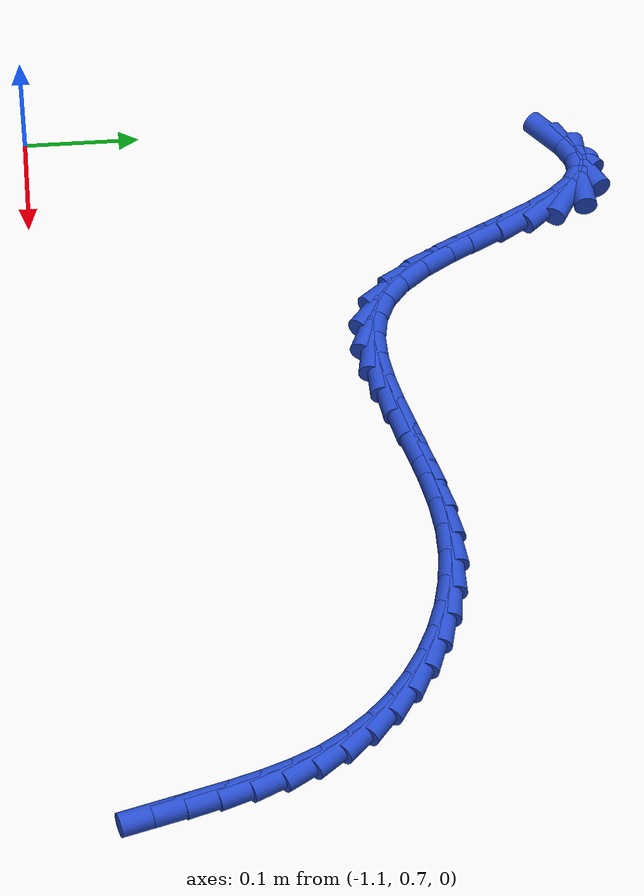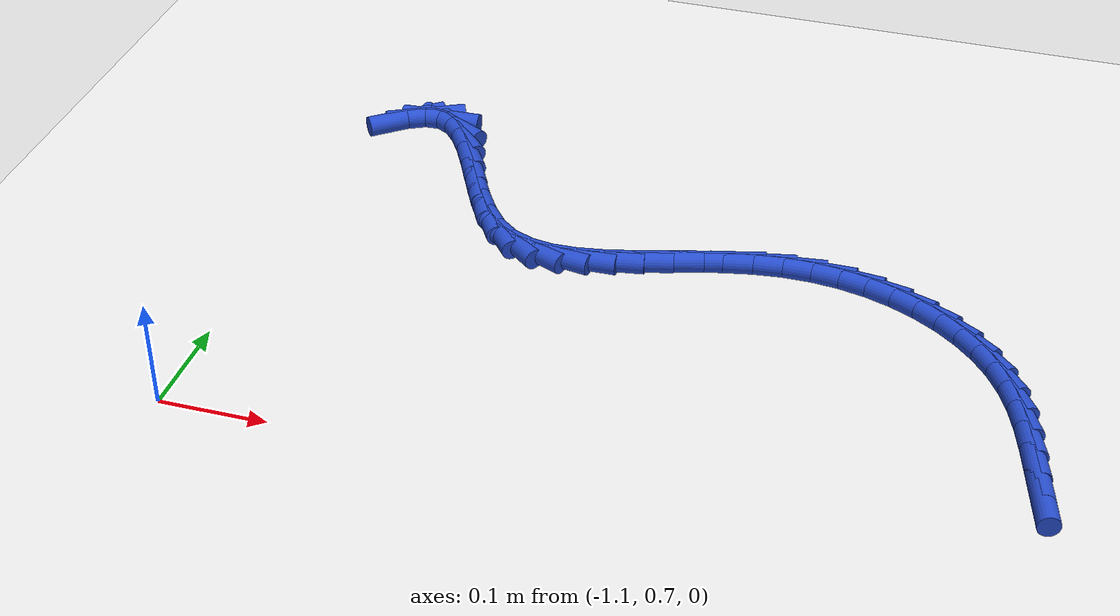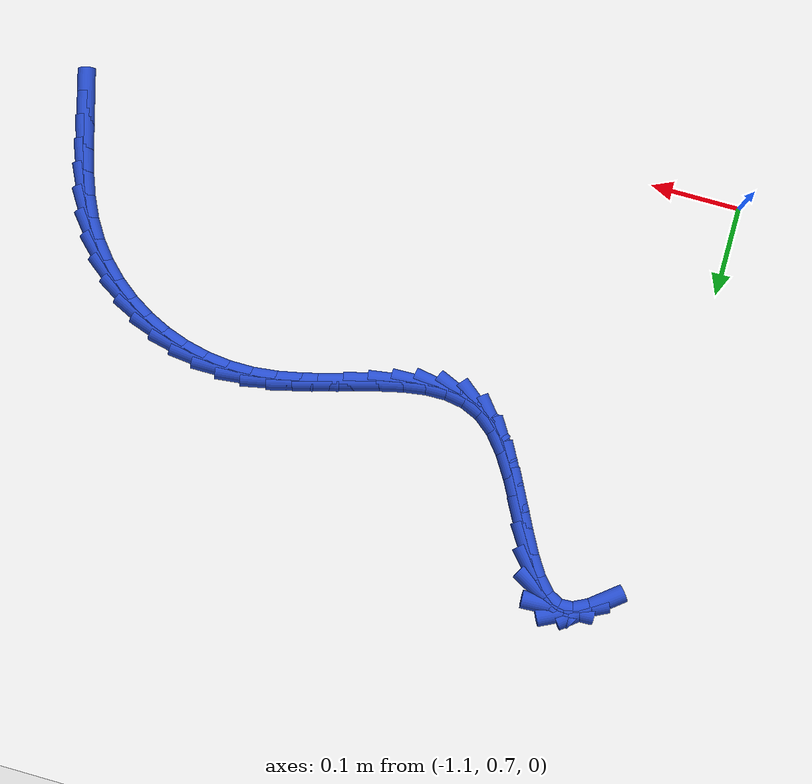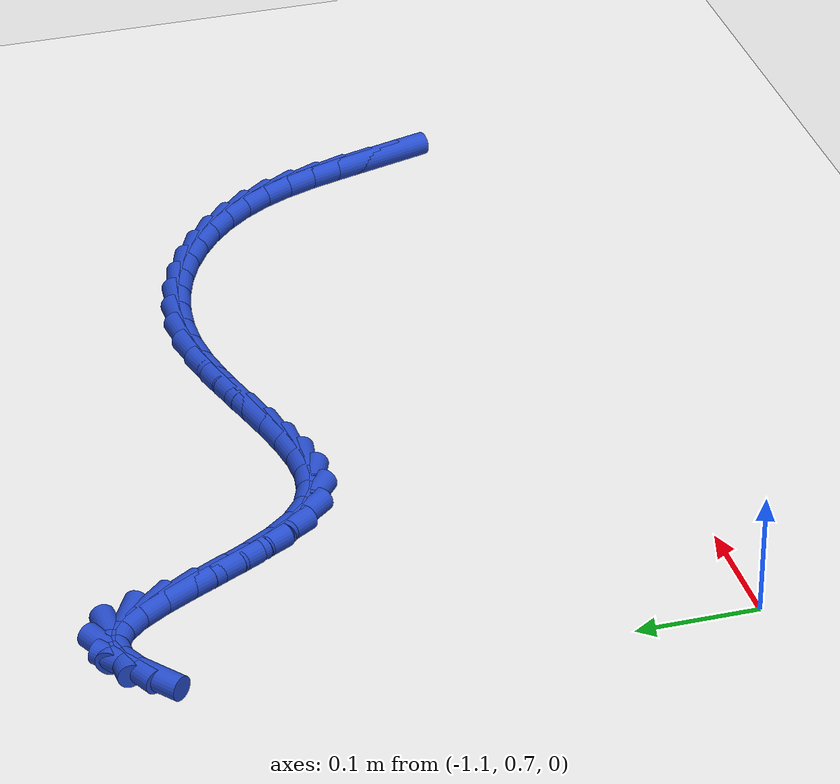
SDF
<sdf version="1.6">
 <world name="default">
  <model name="ground_plane">
   <static>1</static>
   <link name="link">
    <collision name="collision">
     <geometry><plane><normal>0 0 1</normal><size>100 100</size></plane></geometry>
     <surface><friction><ode><mu>100</mu><mu2>50</mu2></ode></friction></surface>
    </collision>
    <visual name="visual">
     <cast_shadows>0</cast_shadows>
     <geometry><plane><normal>0 0 1</normal><size>100 100</size></plane></geometry>
     <material>
      <script><uri>file://media/materials/scripts/gazebo.material</uri><name>Gazebo/WhiteGlow</name></script>
     </material>
    </visual>
   </link>
  </model>
  <model name="line">
   <link name="link_37">
    <pose>-0.3681899620685608 0.7852642038781988 0.01 0 1.57 -1.2999440185714706</pose>
    <collision name="collision">
     <geometry><cylinder><radius>0.01</radius><length>0.08</length></cylinder></geometry>
    </collision>
    <visual name="visual">
     <material>
      <script><name>Gazebo/Blue</name><uri>file://media/materials/scripts/gazebo.material</uri></script>
     </material>
     <geometry><cylinder><radius>0.01</radius><length>0.08</length></cylinder></geometry>
    </visual>
   </link>
   <link name="link_38">
    <pose>-0.37523355729718166 0.8106304460591186 0.01 0 1.57 -1.2973317037078116</pose>
    <collision name="collision">
     <geometry><cylinder><radius>0.01</radius><length>0.08</length></cylinder></geometry>
    </collision>
    <visual name="visual">
     <material>
      <script><name>Gazebo/Blue</name><uri>file://media/materials/scripts/gazebo.material</uri></script>
     </material>
     <geometry><cylinder><radius>0.01</radius><length>0.08</length></cylinder></geometry>
    </visual>
   </link>
   <link name="link_39">
    <pose>-0.38241899353240005 0.8362477300828985 0.01 0 1.57 -1.2677604752531975</pose>
    <collision name="collision">
     <geometry><cylinder><radius>0.01</radius><length>0.08</length></cylinder></geometry>
    </collision>
    <visual name="visual">
     <material>
      <script><name>Gazebo/Blue</name><uri>file://media/materials/scripts/gazebo.material</uri></script>
     </material>
     <geometry><cylinder><radius>0.01</radius><length>0.08</length></cylinder></geometry>
    </visual>
   </link>
   <link name="link_40">
    <pose>-0.39035834988909407 0.8616402034397295 0.01 0 1.57 -1.2103959692966826</pose>
    <collision name="collision">
     <geometry><cylinder><radius>0.01</radius><length>0.08</length></cylinder></geometry>
    </collision>
    <visual name="visual">
     <material>
      <script><name>Gazebo/Blue</name><uri>file://media/materials/scripts/gazebo.material</uri></script>
     </material>
     <geometry><cylinder><radius>0.01</radius><length>0.08</length></cylinder></geometry>
    </visual>
   </link>
   <link name="link_41">
    <pose>-0.3996637054821419 0.8863320136198011 0.01 0 1.57 -1.1234114097512395</pose>
    <collision name="collision">
     <geometry><cylinder><radius>0.01</radius><length>0.08</length></cylinder></geometry>
    </collision>
    <visual name="visual">
     <material>
      <script><name>Gazebo/Blue</name><uri>file://media/materials/scripts/gazebo.material</uri></script>
     </material>
     <geometry><cylinder><radius>0.01</radius><length>0.08</length></cylinder></geometry>
    </visual>
   </link>
   <link name="link_42">
    <pose>-0.4109471394264216 0.9098473081133044 0.01 0 1.57 -1.0083353014706375</pose>
    <collision name="collision">
     <geometry><cylinder><radius>0.01</radius><length>0.08</length></cylinder></geometry>
    </collision>
    <visual name="visual">
     <material>
      <script><name>Gazebo/Blue</name><uri>file://media/materials/scripts/gazebo.material</uri></script>
     </material>
     <geometry><cylinder><radius>0.01</radius><length>0.08</length></cylinder></geometry>
    </visual>
   </link>
   <link name="link_43">
    <pose>-0.42474697905533987 0.9317384997109359 0.01 0 1.57 -0.887326714442278</pose>
    <collision name="collision">
     <geometry><cylinder><radius>0.01</radius><length>0.08</length></cylinder></geometry>
    </collision>
    <visual name="visual">
     <material>
      <script><name>Gazebo/Blue</name><uri>file://media/materials/scripts/gazebo.material</uri></script>
     </material>
     <geometry><cylinder><radius>0.01</radius><length>0.08</length></cylinder></geometry>
    </visual>
   </link>
   <link name="link_44">
    <pose>-0.44105796557774185 0.9517663300715946 0.01 0 1.57 -0.7702196986375826</pose>
    <collision name="collision">
     <geometry><cylinder><radius>0.01</radius><length>0.08</length></cylinder></geometry>
    </collision>
    <visual name="visual">
     <material>
      <script><name>Gazebo/Blue</name><uri>file://media/materials/scripts/gazebo.material</uri></script>
     </material>
     <geometry><cylinder><radius>0.01</radius><length>0.08</length></cylinder></geometry>
    </visual>
   </link>
   <link name="link_45">
    <pose>-0.45963178341461025 0.9697846921382824 0.01 0 1.57 -0.6565164359457617</pose>
    <collision name="collision">
     <geometry><cylinder><radius>0.01</radius><length>0.08</length></cylinder></geometry>
    </collision>
    <visual name="visual">
     <material>
      <script><name>Gazebo/Blue</name><uri>file://media/materials/scripts/gazebo.material</uri></script>
     </material>
     <geometry><cylinder><radius>0.01</radius><length>0.08</length></cylinder></geometry>
    </visual>
   </link>
   <link name="link_46">
    <pose>-0.4802189828700937 0.9856479135032072 0.01 0 1.57 -0.5453960585127497</pose>
    <collision name="collision">
     <geometry><cylinder><radius>0.01</radius><length>0.08</length></cylinder></geometry>
    </collision>
    <visual name="visual">
     <material>
      <script><name>Gazebo/Blue</name><uri>file://media/materials/scripts/gazebo.material</uri></script>
     </material>
     <geometry><cylinder><radius>0.01</radius><length>0.08</length></cylinder></geometry>
    </visual>
   </link>
   <link name="link_47">
    <pose>-0.5025701142483407 0.9992103217585755 0.01 0 1.57 -0.4358918287051869</pose>
    <collision name="collision">
     <geometry><cylinder><radius>0.01</radius><length>0.08</length></cylinder></geometry>
    </collision>
    <visual name="visual">
     <material>
      <script><name>Gazebo/Blue</name><uri>file://media/materials/scripts/gazebo.material</uri></script>
     </material>
     <geometry><cylinder><radius>0.01</radius><length>0.08</length></cylinder></geometry>
    </visual>
   </link>
   <link name="link_48">
    <pose>-0.5264357278535002 1.0103262444965948 0.01 0 1.57 -0.3270015888923815</pose>
    <collision name="collision">
     <geometry><cylinder><radius>0.01</radius><length>0.08</length></cylinder></geometry>
    </collision>
    <visual name="visual">
     <material>
      <script><name>Gazebo/Blue</name><uri>file://media/materials/scripts/gazebo.material</uri></script>
     </material>
     <geometry><cylinder><radius>0.01</radius><length>0.08</length></cylinder></geometry>
    </visual>
   </link>
   <link name="link_49">
    <pose>-0.5515663739897203 1.0188500093094714 0.01 0 1.57 -0.21778171106188735</pose>
    <collision name="collision">
     <geometry><cylinder><radius>0.01</radius><length>0.08</length></cylinder></geometry>
    </collision>
    <visual name="visual">
     <material>
      <script><name>Gazebo/Blue</name><uri>file://media/materials/scripts/gazebo.material</uri></script>
     </material>
     <geometry><cylinder><radius>0.01</radius><length>0.08</length></cylinder></geometry>
    </visual>
   </link>
   <link name="link_50">
    <pose>-0.5777126029611501 1.024635943789413 0.01 0 1.57 -0.10743229434449983</pose>
    <collision name="collision">
     <geometry><cylinder><radius>0.01</radius><length>0.08</length></cylinder></geometry>
    </collision>
    <visual name="visual">
     <material>
      <script><name>Gazebo/Blue</name><uri>file://media/materials/scripts/gazebo.material</uri></script>
     </material>
     <geometry><cylinder><radius>0.01</radius><length>0.08</length></cylinder></geometry>
    </visual>
   </link>
   <link name="link_51">
    <pose>-0.6046249650719375 1.0275383755286263 0.01 0 1.57 0.004620740703959871</pose>
    <collision name="collision">
     <geometry><cylinder><radius>0.01</radius><length>0.08</length></cylinder></geometry>
    </collision>
    <visual name="visual">
     <material>
      <script><name>Gazebo/Blue</name><uri>file://media/materials/scripts/gazebo.material</uri></script>
     </material>
     <geometry><cylinder><radius>0.01</radius><length>0.08</length></cylinder></geometry>
    </visual>
   </link>
   <link name="link_52">
    <pose>-0.6320540106262318 1.0274116321193183 0.01 0 1.57 0.11573695629212997</pose>
    <collision name="collision">
     <geometry><cylinder><radius>0.01</radius><length>0.08</length></cylinder></geometry>
    </collision>
    <visual name="visual">
     <material>
      <script><name>Gazebo/Blue</name><uri>file://media/materials/scripts/gazebo.material</uri></script>
     </material>
     <geometry><cylinder><radius>0.01</radius><length>0.08</length></cylinder></geometry>
    </visual>
   </link>
   <link name="link_53">
    <pose>-0.6597530591175419 1.024191437483295 0.01 0 1.57 0.20262990746897866</pose>
    <collision name="collision">
     <geometry><cylinder><radius>0.01</radius><length>0.08</length></cylinder></geometry>
    </collision>
    <visual name="visual">
     <material>
      <script><name>Gazebo/Blue</name><uri>file://media/materials/scripts/gazebo.material</uri></script>
     </material>
     <geometry><cylinder><radius>0.01</radius><length>0.08</length></cylinder></geometry>
    </visual>
   </link>
   <link name="link_54">
    <pose>-0.6874984840334841 1.0184911544678272 0.01 0 1.57 0.2564060793894565</pose>
    <collision name="collision">
     <geometry><cylinder><radius>0.01</radius><length>0.08</length></cylinder></geometry>
    </collision>
    <visual name="visual">
     <material>
      <script><name>Gazebo/Blue</name><uri>file://media/materials/scripts/gazebo.material</uri></script>
     </material>
     <geometry><cylinder><radius>0.01</radius><length>0.08</length></cylinder></geometry>
    </visual>
   </link>
   <link name="link_55">
    <pose>-0.7150780990979356 1.0112604151744806 0.01 0 1.57 0.2795644236519791</pose>
    <collision name="collision">
     <geometry><cylinder><radius>0.01</radius><length>0.08</length></cylinder></geometry>
    </collision>
    <visual name="visual">
     <material>
      <script><name>Gazebo/Blue</name><uri>file://media/materials/scripts/gazebo.material</uri></script>
     </material>
     <geometry><cylinder><radius>0.01</radius><length>0.08</length></cylinder></geometry>
    </visual>
   </link>
   <link name="link_56">
    <pose>-0.742279800471208 1.0034512748049902 0.01 0 1.57 0.2724585727655352</pose>
    <collision name="collision">
     <geometry><cylinder><radius>0.01</radius><length>0.08</length></cylinder></geometry>
    </collision>
    <visual name="visual">
     <material>
      <script><name>Gazebo/Blue</name><uri>file://media/materials/scripts/gazebo.material</uri></script>
     </material>
     <geometry><cylinder><radius>0.01</radius><length>0.08</length></cylinder></geometry>
    </visual>
   </link>
   <link name="link_57">
    <pose>-0.7688914843136125 0.9960157885610905 0.01 0 1.57 0.23244635598275726</pose>
    <collision name="collision">
     <geometry><cylinder><radius>0.01</radius><length>0.08</length></cylinder></geometry>
    </collision>
    <visual name="visual">
     <material>
      <script><name>Gazebo/Blue</name><uri>file://media/materials/scripts/gazebo.material</uri></script>
     </material>
     <geometry><cylinder><radius>0.01</radius><length>0.08</length></cylinder></geometry>
    </visual>
   </link>
   <link name="link_58">
    <pose>-0.7947010467854609 0.989906011644517 0.01 0 1.57 0.15333261369806758</pose>
    <collision name="collision">
     <geometry><cylinder><radius>0.01</radius><length>0.08</length></cylinder></geometry>
    </collision>
    <visual name="visual">
     <material>
      <script><name>Gazebo/Blue</name><uri>file://media/materials/scripts/gazebo.material</uri></script>
     </material>
     <geometry><cylinder><radius>0.01</radius><length>0.08</length></cylinder></geometry>
    </visual>
   </link>
   <link name="link_59">
    <pose>-0.8194963840470649 0.9860739992570043 0.01 0 1.57 0.025544633148398773</pose>
    <collision name="collision">
     <geometry><cylinder><radius>0.01</radius><length>0.08</length></cylinder></geometry>
    </collision>
    <visual name="visual">
     <material>
      <script><name>Gazebo/Blue</name><uri>file://media/materials/scripts/gazebo.material</uri></script>
     </material>
     <geometry><cylinder><radius>0.01</radius><length>0.08</length></cylinder></geometry>
    </visual>
   </link>
   <link name="link_60">
    <pose>-0.8430653922587361 0.9854718066002872 0.01 0 1.57 -0.16036383075150487</pose>
    <collision name="collision">
     <geometry><cylinder><radius>0.01</radius><length>0.08</length></cylinder></geometry>
    </collision>
    <visual name="visual">
     <material>
      <script><name>Gazebo/Blue</name><uri>file://media/materials/scripts/gazebo.material</uri></script>
     </material>
     <geometry><cylinder><radius>0.01</radius><length>0.08</length></cylinder></geometry>
    </visual>
   </link>
   <link name="link_61">
    <pose>-0.8651959675807865 0.9890514888761013 0.01 0 1.57 -0.4022674501179532</pose>
    <collision name="collision">
     <geometry><cylinder><radius>0.01</radius><length>0.08</length></cylinder></geometry>
    </collision>
    <visual name="visual">
     <material>
      <script><name>Gazebo/Blue</name><uri>file://media/materials/scripts/gazebo.material</uri></script>
     </material>
     <geometry><cylinder><radius>0.01</radius><length>0.08</length></cylinder></geometry>
    </visual>
   </link>
   <link name="link_62">
    <pose>-0.8856760061735269 0.9977651012861808 0.01 0 1.57 -0.6698274395557087</pose>
    <collision name="collision">
     <geometry><cylinder><radius>0.01</radius><length>0.08</length></cylinder></geometry>
    </collision>
    <visual name="visual">
     <material>
      <script><name>Gazebo/Blue</name><uri>file://media/materials/scripts/gazebo.material</uri></script>
     </material>
     <geometry><cylinder><radius>0.01</radius><length>0.08</length></cylinder></geometry>
    </visual>
   </link>
   <link name="link_63">
    <pose>-0.9043033965153783 1.012517497872306 0.01 0 1.57 -0.8807088605219451</pose>
    <collision name="collision">
     <geometry><cylinder><radius>0.01</radius><length>0.08</length></cylinder></geometry>
    </collision>
    <visual name="visual">
     <material>
      <script><name>Gazebo/Blue</name><uri>file://media/materials/scripts/gazebo.material</uri></script>
     </material>
     <geometry><cylinder><radius>0.01</radius><length>0.08</length></cylinder></geometry>
    </visual>
   </link>
   <link name="link_64">
    <pose>-0.9211489357197618 1.0329243819512868 0.01 0 1.57 -1.0042645143305684</pose>
    <collision name="collision">
     <geometry><cylinder><radius>0.01</radius><length>0.08</length></cylinder></geometry>
    </collision>
    <visual name="visual">
     <material>
      <script><name>Gazebo/Blue</name><uri>file://media/materials/scripts/gazebo.material</uri></script>
     </material>
     <geometry><cylinder><radius>0.01</radius><length>0.08</length></cylinder></geometry>
    </visual>
   </link>
   <link name="link_65">
    <pose>-0.9365826563506443 1.0571879449589177 0.01 0 1.57 -1.0688442923768795</pose>
    <collision name="collision">
     <geometry><cylinder><radius>0.01</radius><length>0.08</length></cylinder></geometry>
    </collision>
    <visual name="visual">
     <material>
      <script><name>Gazebo/Blue</name><uri>file://media/materials/scripts/gazebo.material</uri></script>
     </material>
     <geometry><cylinder><radius>0.01</radius><length>0.08</length></cylinder></geometry>
    </visual>
   </link>
   <link name="link_66">
    <pose>-0.9509898626561805 1.0834382387933685 0.01 0 1.57 -1.0896330163368833</pose>
    <collision name="collision">
     <geometry><cylinder><radius>0.01</radius><length>0.08</length></cylinder></geometry>
    </collision>
    <visual name="visual">
     <material>
      <script><name>Gazebo/Blue</name><uri>file://media/materials/scripts/gazebo.material</uri></script>
     </material>
     <geometry><cylinder><radius>0.01</radius><length>0.08</length></cylinder></geometry>
    </visual>
   </link>
   <link name="link_67">
    <pose>-0.9647558588845252 1.1098053153528085 0.01 0 1.57 -1.0688131941317225</pose>
    <collision name="collision">
     <geometry><cylinder><radius>0.01</radius><length>0.08</length></cylinder></geometry>
    </collision>
    <visual name="visual">
     <material>
      <script><name>Gazebo/Blue</name><uri>file://media/materials/scripts/gazebo.material</uri></script>
     </material>
     <geometry><cylinder><radius>0.01</radius><length>0.08</length></cylinder></geometry>
    </visual>
   </link>
   <link name="link_68">
    <pose>-0.9782659492838334 1.1344192265354078 0.01 0 1.57 -0.9945728217207903</pose>
    <collision name="collision">
     <geometry><cylinder><radius>0.01</radius><length>0.08</length></cylinder></geometry>
    </collision>
    <visual name="visual">
     <material>
      <script><name>Gazebo/Blue</name><uri>file://media/materials/scripts/gazebo.material</uri></script>
     </material>
     <geometry><cylinder><radius>0.01</radius><length>0.08</length></cylinder></geometry>
    </visual>
   </link>
   <link name="link_69">
    <pose>-0.9919054381022597 1.1554100242393353 0.01 0 1.57 -0.8306777261333411</pose>
    <collision name="collision">
     <geometry><cylinder><radius>0.01</radius><length>0.08</length></cylinder></geometry>
    </collision>
    <visual name="visual">
     <material>
      <script><name>Gazebo/Blue</name><uri>file://media/materials/scripts/gazebo.material</uri></script>
     </material>
     <geometry><cylinder><radius>0.01</radius><length>0.08</length></cylinder></geometry>
    </visual>
   </link>
   <link name="link_70">
    <pose>-1.006059629587959 1.1709077603627605 0.01 0 1.57 -0.49541399150802545</pose>
    <collision name="collision">
     <geometry><cylinder><radius>0.01</radius><length>0.08</length></cylinder></geometry>
    </collision>
    <visual name="visual">
     <material>
      <script><name>Gazebo/Blue</name><uri>file://media/materials/scripts/gazebo.material</uri></script>
     </material>
     <geometry><cylinder><radius>0.01</radius><length>0.08</length></cylinder></geometry>
    </visual>
   </link>
   <link name="link_71">
    <pose>-1.0211138279890861 1.1790424868038534 0.01 0 1.57 0.04532884184617204</pose>
    <collision name="collision">
     <geometry><cylinder><radius>0.01</radius><length>0.08</length></cylinder></geometry>
    </collision>
    <visual name="visual">
     <material>
      <script><name>Gazebo/Blue</name><uri>file://media/materials/scripts/gazebo.material</uri></script>
     </material>
     <geometry><cylinder><radius>0.01</radius><length>0.08</length></cylinder></geometry>
    </visual>
   </link>
   <link name="link_72">
    <pose>-1.0374026441365822 1.178303627517824 0.01 0 1.57 0.46151249241023273</pose>
    <collision name="collision">
     <geometry><cylinder><radius>0.01</radius><length>0.08</length></cylinder></geometry>
    </collision>
    <visual name="visual">
     <material>
      <script><name>Gazebo/Blue</name><uri>file://media/materials/scripts/gazebo.material</uri></script>
     </material>
     <geometry><cylinder><radius>0.01</radius><length>0.08</length></cylinder></geometry>
    </visual>
   </link>
   <link name="link_73">
    <pose>-1.0549206282303747 1.1695913393558681 0.01 0 1.57 0.6718697735068137</pose>
    <collision name="collision">
     <geometry><cylinder><radius>0.01</radius><length>0.08</length></cylinder></geometry>
    </collision>
    <visual name="visual">
     <material>
      <script><name>Gazebo/Blue</name><uri>file://media/materials/scripts/gazebo.material</uri></script>
     </material>
     <geometry><cylinder><radius>0.01</radius><length>0.08</length></cylinder></geometry>
    </visual>
   </link>
  </model>
 </world>
</sdf>
